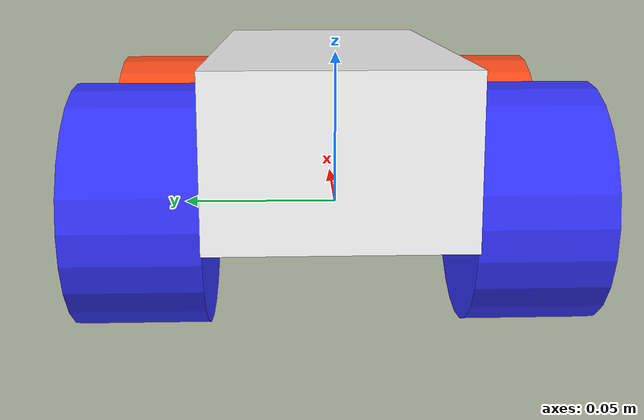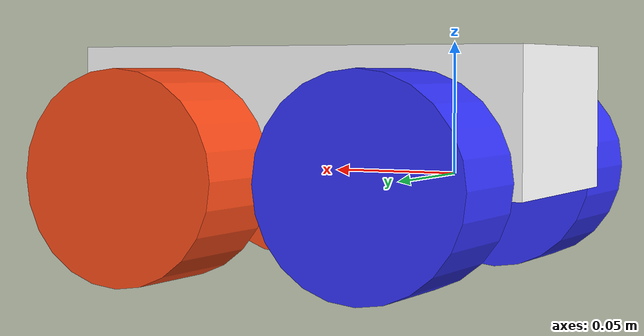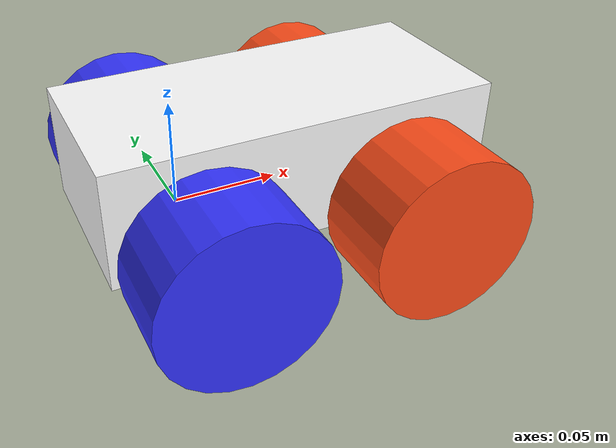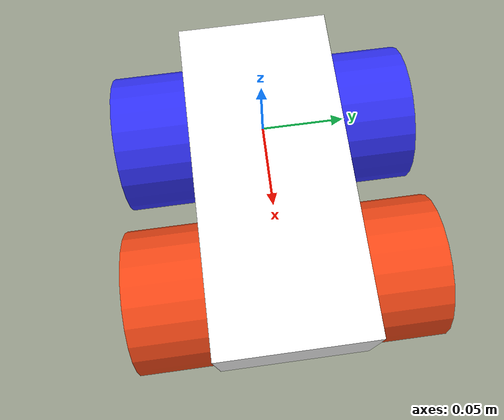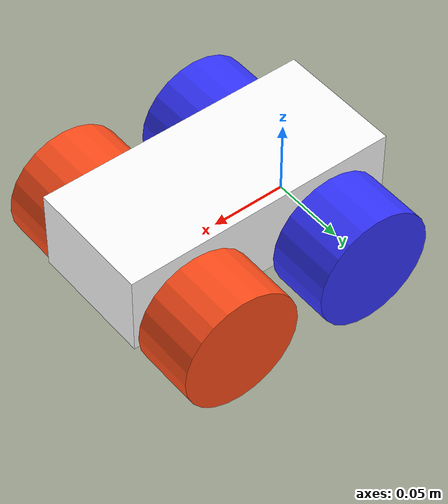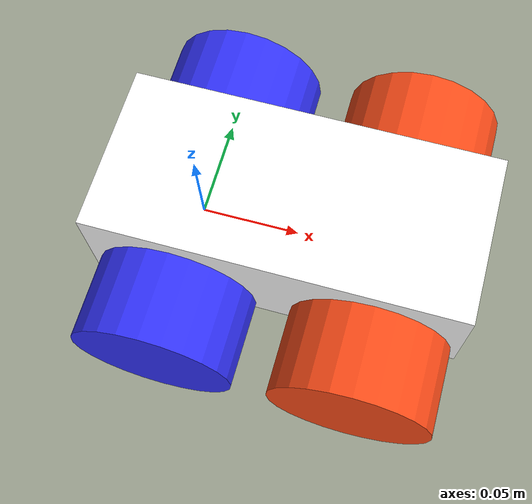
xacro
<?xml version="1.0"?>
<robot xmlns:xacro="http://www.ros.org/wiki/xacro">

    <xacro:include filename="inertial_macros.xacro"/>

    <material name="white">
        <color rgba="1 1 1 1"/>
    </material>

    <material name="blue">
        <color rgba="0.2 0.2 1 1"/>
    </material>

    <material name="orange">
        <color rgba="1 0.3 0.1 1"/>
    </material>

    <link name="base_link">
    </link>

    <joint name="chassis_joint" type="fixed">
        <parent link="base_link"/>
        <child link="chassis_link"/>
        <origin xyz="-0.043 0.0 -0.0063"/>
    </joint>

    <link name="chassis_link">
        <visual>
            <origin xyz="0.0915 0.0 0.02735"/>
            <geometry>
                <box size="0.183 0.083 0.0547"/>
            </geometry>
            <material name="white"/>
        </visual>
        <collision>
            <origin xyz="0.0915 0 0.02735"/>
            <geometry>
                <box size="0.183 0.083 0.0547"/>
            </geometry>
        </collision>
        <xacro:inertial_box mass="0.66" x="0.183" y="0.083" z="0.0547">
            <origin xyz="0.0915 0 0.02735" rpy="0 0 0"/>
        </xacro:inertial_box>
    </link>

    <gazebo reference="chassis_link">
        <material>Gazebo/White</material>
    </gazebo>

    <joint name="lrw_joint" type="continuous">
        <parent link="base_link"/>
        <child link="lrw_link"/>
        <origin xyz="0.0 0.06275 0.0" rpy="-1.5708 0 0"/>
        <axis xyz="0 0 1"/>
    </joint>

    <link name="lrw_link">
        <visual>
            <geometry>
                <cylinder length="0.0425" radius="0.04"/>
            </geometry>
            <material name="blue"/>
        </visual>
        <collision>
            <geometry>
                <cylinder radius="0.04" length="0.0425"/>
            </geometry>
        </collision>
        <xacro:inertial_cylinder mass="0.05" length="0.0425" radius="0.04">
            <origin xyz="0 0 0" rpy="0 0 0"/>
        </xacro:inertial_cylinder>
    </link>

    <gazebo reference="lrw_link">
        <material>Gazebo/Blue</material>
        <mu1 value="1"/>
        <mu2 value="0.25"/>
        <kp value="10000000.0"/>
        <kd value="1"/>
        <fdir1 value="1 0 0"/>
    </gazebo>

    <joint name="rrw_joint" type="continuous">
        <parent link="base_link"/>
        <child link="rrw_link"/>
        <origin xyz="0.0 -0.06275 0.0" rpy="1.5708 0 0"/>
        <axis xyz="0 0 -1"/>
    </joint>

    <link name="rrw_link">
        <visual>
            <geometry>
                <cylinder length="0.0425" radius="0.04"/>
            </geometry>
            <material name="blue"/>
        </visual>
        <collision>
            <geometry>
                <cylinder radius="0.04" length="0.0425"/>
            </geometry>
        </collision>
        <xacro:inertial_cylinder mass="0.05" length="0.0425" radius="0.04">
            <origin xyz="0 0 0" rpy="0 0 0"/>
        </xacro:inertial_cylinder>
    </link>

    <gazebo reference="rrw_link">
        <material>Gazebo/Blue</material>
        <mu1 value="1"/>
        <mu2 value="0.25"/>
        <kp value="10000000.0"/>
        <kd value="1"/>
        <fdir1 value="1 0 0"/>
    </gazebo>

    <joint name="lfw_joint" type="continuous">
        <parent link="base_link"/>
        <child link="lfw_link"/>
        <origin xyz="0.097 0.06275 0.0" rpy="-1.5708 0 0"/>
        <axis xyz="0 0 1"/>
    </joint>

    <link name="lfw_link">
        <visual>
            <geometry>
                <cylinder length="0.0425" radius="0.04"/>
            </geometry>
            <material name="orange"/>
        </visual>
        <collision>
            <geometry>
                <cylinder radius="0.04" length="0.0425"/>
            </geometry>
        </collision>
        <xacro:inertial_cylinder mass="0.05" length="0.0425" radius="0.04">
            <origin xyz="0 0 0" rpy="0 0 0"/>
        </xacro:inertial_cylinder>
    </link>

    <gazebo reference="lfw_link">
        <material>Gazebo/Orange</material>
        <mu1 value="1.0"/>
        <mu2 value="0.25"/>
        <kp value="10000000.0"/>
        <kd value="1"/>
        <fdir1 value="1 0 0"/>
    </gazebo>

    <joint name="rfw_joint" type="continuous">
        <parent link="base_link"/>
        <child link="rfw_link"/>
        <origin xyz="0.097 -0.06275 0.0" rpy="1.5708 0 0"/>
        <axis xyz="0 0 -1"/>
    </joint>

    <link name="rfw_link">
        <visual>
            <geometry>
                <cylinder length="0.0425" radius="0.04"/>
            </geometry>
            <material name="orange"/>
        </visual>
        <collision>
            <geometry>
                <cylinder radius="0.04" length="0.0425"/>
            </geometry>
        </collision>
        <xacro:inertial_cylinder mass="0.05" length="0.0425" radius="0.04">
            <origin xyz="0 0 0" rpy="0 0 0"/>
        </xacro:inertial_cylinder>
    </link>

    <gazebo reference="rfw_link">
        <material>Gazebo/Orange</material>
        <mu1 value="1"/>
        <mu2 value="0.25"/>
        <kp value="10000000.0"/>
        <kd value="1"/>
        <fdir1 value="1 0 0"/>
    </gazebo>
</robot>
